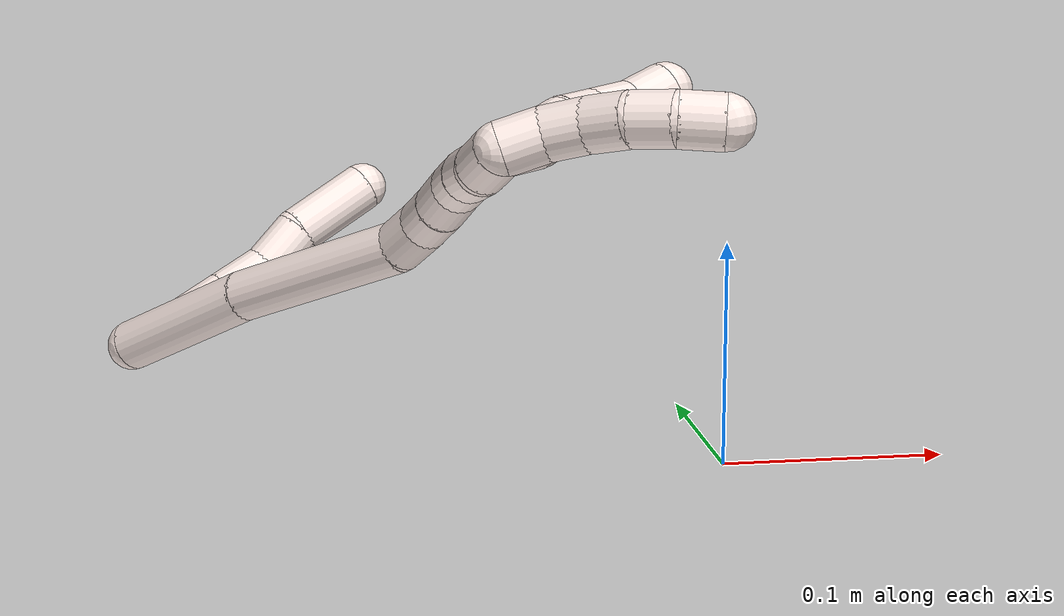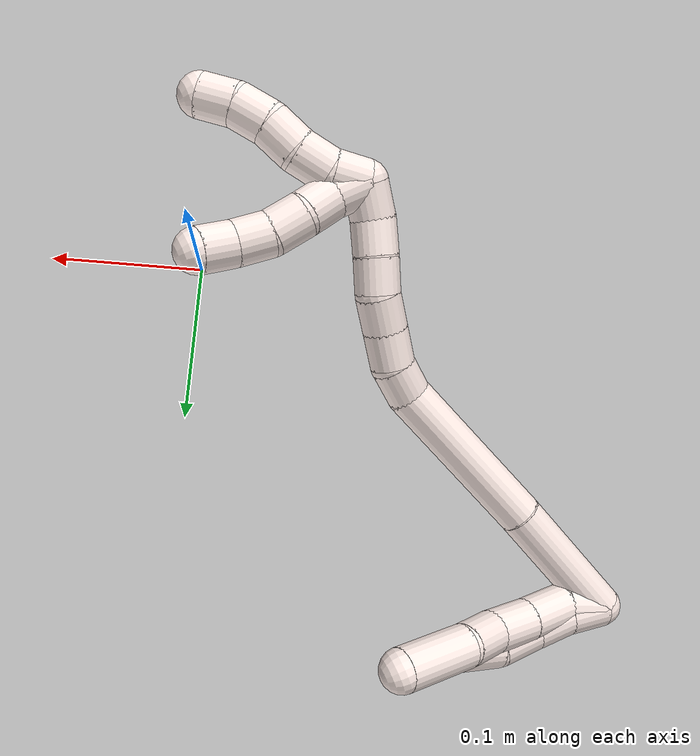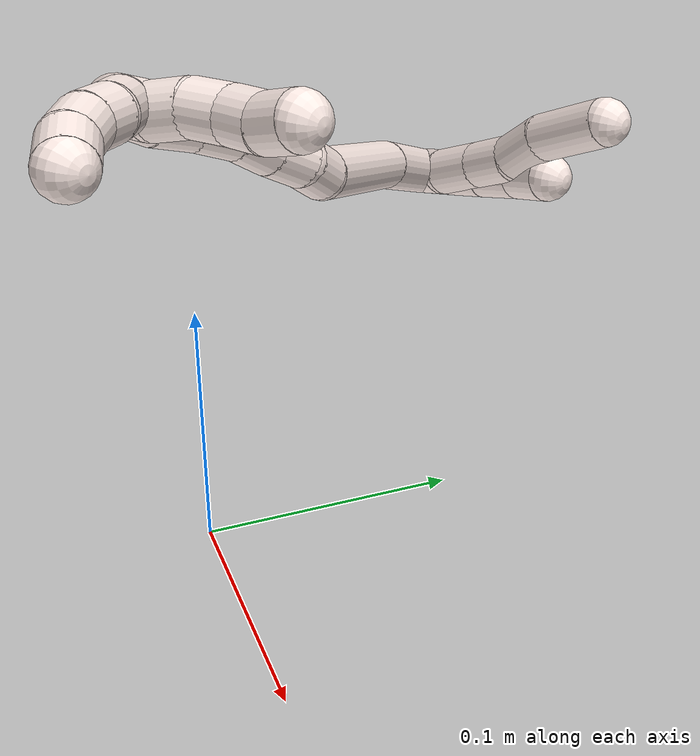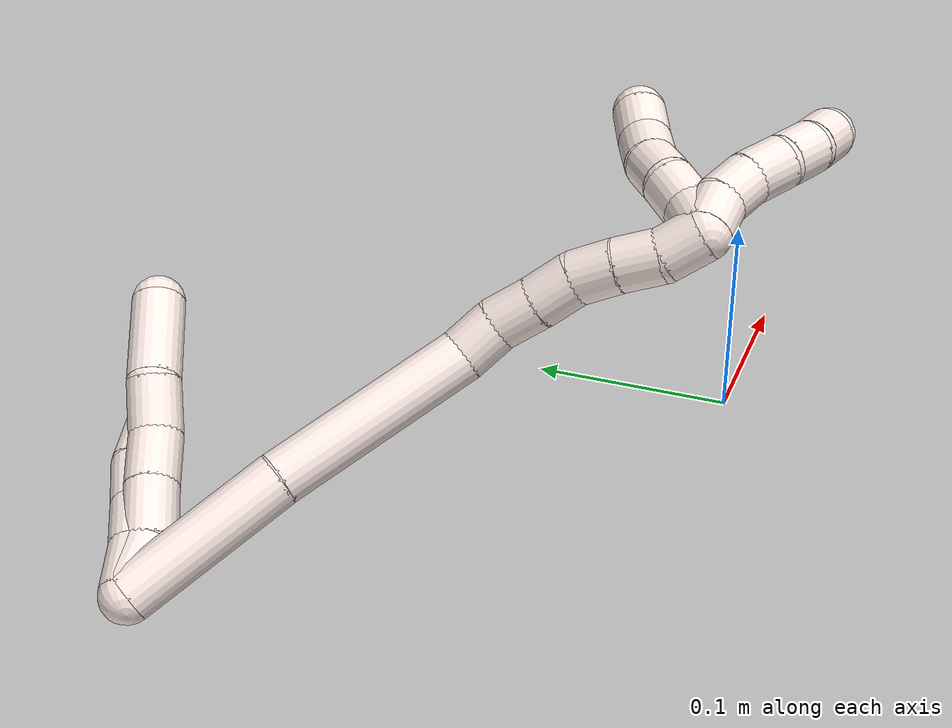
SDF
<sdf version="1.7">
 <world name="default">
  <model name="11">
   <static>0</static>
   <link name="11">
    <collision name="collision-cylinder-e_1_2_8">
     <pose>0.006229 0.000278 -0.011472 -3.11739 0.49733 -3.04636</pose>
     <geometry><cylinder><radius>0.0125</radius><length>0.026114</length></cylinder></geometry>
     <surface>
      <friction><ode><mu>1.16</mu><mu2>1.16</mu2><slip1>0</slip1><slip2>0</slip2></ode></friction>
      <contact><ode><kp>1e+06</kp><kd>1</kd><max_vel>0</max_vel><min_depth>0.001</min_depth></ode></contact>
     </surface>
    </collision>
    <visual name="visual-cylinder-e_1_2_8">
     <pose>0.006229 0.000278 -0.011472 -3.11739 0.49733 -3.04636</pose>
     <geometry><cylinder><radius>0.0125</radius><length>0.026114</length></cylinder></geometry>
     <material><ambient>1 0.933333 0.909804 1</ambient></material>
    </visual>
    <collision name="collision-cylinder-e_2_8_9">
     <pose>0.016064 0.004259 -0.036099 -2.86717 0.25791 -1.50805</pose>
     <geometry><cylinder><radius>0.0125</radius><length>0.028268</length></cylinder></geometry>
     <surface>
      <friction><ode><mu>1.16</mu><mu2>1.16</mu2><slip1>0</slip1><slip2>0</slip2></ode></friction>
      <contact><ode><kp>1e+06</kp><kd>1</kd><max_vel>0</max_vel><min_depth>0.001</min_depth></ode></contact>
     </surface>
    </collision>
    <visual name="visual-cylinder-e_2_8_9">
     <pose>0.016064 0.004259 -0.036099 -2.86717 0.25791 -1.50805</pose>
     <geometry><cylinder><radius>0.0125</radius><length>0.028268</length></cylinder></geometry>
     <material><ambient>1 0.933333 0.909804 1</ambient></material>
    </visual>
    <collision name="collision-cylinder-e_3_9_10">
     <pose>0.023662 0.011218 -0.061299 -2.87758 0.309755 -1.73207</pose>
     <geometry><cylinder><radius>0.0125</radius><length>0.026202</length></cylinder></geometry>
     <surface>
      <friction><ode><mu>1.16</mu><mu2>1.16</mu2><slip1>0</slip1><slip2>0</slip2></ode></friction>
      <contact><ode><kp>1e+06</kp><kd>1</kd><max_vel>0</max_vel><min_depth>0.001</min_depth></ode></contact>
     </surface>
    </collision>
    <visual name="visual-cylinder-e_3_9_10">
     <pose>0.023662 0.011218 -0.061299 -2.87758 0.309755 -1.73207</pose>
     <geometry><cylinder><radius>0.0125</radius><length>0.026202</length></cylinder></geometry>
     <material><ambient>1 0.933333 0.909804 1</ambient></material>
    </visual>
    <collision name="collision-cylinder-e_4_10_11">
     <pose>0.032446 0.020753 -0.083604 -2.59239 0.379031 -1.19556</pose>
     <geometry><cylinder><radius>0.0125</radius><length>0.025895</length></cylinder></geometry>
     <surface>
      <friction><ode><mu>1.16</mu><mu2>1.16</mu2><slip1>0</slip1><slip2>0</slip2></ode></friction>
      <contact><ode><kp>1e+06</kp><kd>1</kd><max_vel>0</max_vel><min_depth>0.001</min_depth></ode></contact>
     </surface>
    </collision>
    <visual name="visual-cylinder-e_4_10_11">
     <pose>0.032446 0.020753 -0.083604 -2.59239 0.379031 -1.19556</pose>
     <geometry><cylinder><radius>0.0125</radius><length>0.025895</length></cylinder></geometry>
     <material><ambient>1 0.933333 0.909804 1</ambient></material>
    </visual>
    <collision name="collision-cylinder-e_5_11_6">
     <pose>0.043694 0.032999 -0.113769 -2.85038 0.301235 -1.60514</pose>
     <geometry><cylinder><radius>0.0125</radius><length>0.043522</length></cylinder></geometry>
     <surface>
      <friction><ode><mu>1.16</mu><mu2>1.16</mu2><slip1>0</slip1><slip2>0</slip2></ode></friction>
      <contact><ode><kp>1e+06</kp><kd>1</kd><max_vel>0</max_vel><min_depth>0.001</min_depth></ode></contact>
     </surface>
    </collision>
    <visual name="visual-cylinder-e_5_11_6">
     <pose>0.043694 0.032999 -0.113769 -2.85038 0.301235 -1.60514</pose>
     <geometry><cylinder><radius>0.0125</radius><length>0.043522</length></cylinder></geometry>
     <material><ambient>1 0.933333 0.909804 1</ambient></material>
    </visual>
    <collision name="collision-cylinder-e_1_2_12">
     <pose>0.003343 0.00105 -0.011852 -3.05327 0.273903 -2.52102</pose>
     <geometry><cylinder><radius>0.0125</radius><length>0.024719</length></cylinder></geometry>
     <surface>
      <friction><ode><mu>1.16</mu><mu2>1.16</mu2><slip1>0</slip1><slip2>0</slip2></ode></friction>
      <contact><ode><kp>1e+06</kp><kd>1</kd><max_vel>0</max_vel><min_depth>0.001</min_depth></ode></contact>
     </surface>
    </collision>
    <visual name="visual-cylinder-e_1_2_12">
     <pose>0.003343 0.00105 -0.011852 -3.05327 0.273903 -2.52102</pose>
     <geometry><cylinder><radius>0.0125</radius><length>0.024719</length></cylinder></geometry>
     <material><ambient>1 0.933333 0.909804 1</ambient></material>
    </visual>
    <collision name="collision-cylinder-e_2_12_13">
     <pose>0.008219 0.003662 -0.035358 -3.0083 0.129663 -1.54309</pose>
     <geometry><cylinder><radius>0.0125</radius><length>0.023714</length></cylinder></geometry>
     <surface>
      <friction><ode><mu>1.16</mu><mu2>1.16</mu2><slip1>0</slip1><slip2>0</slip2></ode></friction>
      <contact><ode><kp>1e+06</kp><kd>1</kd><max_vel>0</max_vel><min_depth>0.001</min_depth></ode></contact>
     </surface>
    </collision>
    <visual name="visual-cylinder-e_2_12_13">
     <pose>0.008219 0.003662 -0.035358 -3.0083 0.129663 -1.54309</pose>
     <geometry><cylinder><radius>0.0125</radius><length>0.023714</length></cylinder></geometry>
     <material><ambient>1 0.933333 0.909804 1</ambient></material>
    </visual>
    <collision name="collision-cylinder-e_3_13_14">
     <pose>0.011149 0.00703 -0.058862 -2.99042 0.115974 -1.30802</pose>
     <geometry><cylinder><radius>0.0125</radius><length>0.024136</length></cylinder></geometry>
     <surface>
      <friction><ode><mu>1.16</mu><mu2>1.16</mu2><slip1>0</slip1><slip2>0</slip2></ode></friction>
      <contact><ode><kp>1e+06</kp><kd>1</kd><max_vel>0</max_vel><min_depth>0.001</min_depth></ode></contact>
     </surface>
    </collision>
    <visual name="visual-cylinder-e_3_13_14">
     <pose>0.011149 0.00703 -0.058862 -2.99042 0.115974 -1.30802</pose>
     <geometry><cylinder><radius>0.0125</radius><length>0.024136</length></cylinder></geometry>
     <material><ambient>1 0.933333 0.909804 1</ambient></material>
    </visual>
    <collision name="collision-cylinder-e_4_14_5">
     <pose>0.017903 0.009392 -0.083326 -3.09745 0.401273 -2.92533</pose>
     <geometry><cylinder><radius>0.0125</radius><length>0.027431</length></cylinder></geometry>
     <surface>
      <friction><ode><mu>1.16</mu><mu2>1.16</mu2><slip1>0</slip1><slip2>0</slip2></ode></friction>
      <contact><ode><kp>1e+06</kp><kd>1</kd><max_vel>0</max_vel><min_depth>0.001</min_depth></ode></contact>
     </surface>
    </collision>
    <visual name="visual-cylinder-e_4_14_5">
     <pose>0.017903 0.009392 -0.083326 -3.09745 0.401273 -2.92533</pose>
     <geometry><cylinder><radius>0.0125</radius><length>0.027431</length></cylinder></geometry>
     <material><ambient>1 0.933333 0.909804 1</ambient></material>
    </visual>
    <collision name="collision-cylinder-e_1_2_15">
     <pose>0.03649 -0.006636 -0.014699 2.71752 1.15464 2.50319</pose>
     <geometry><cylinder><radius>0.0125</radius><length>0.07979</length></cylinder></geometry>
     <surface>
      <friction><ode><mu>1.16</mu><mu2>1.16</mu2><slip1>0</slip1><slip2>0</slip2></ode></friction>
      <contact><ode><kp>1e+06</kp><kd>1</kd><max_vel>0</max_vel><min_depth>0.001</min_depth></ode></contact>
     </surface>
    </collision>
    <visual name="visual-cylinder-e_1_2_15">
     <pose>0.03649 -0.006636 -0.014699 2.71752 1.15464 2.50319</pose>
     <geometry><cylinder><radius>0.0125</radius><length>0.07979</length></cylinder></geometry>
     <material><ambient>1 0.933333 0.909804 1</ambient></material>
    </visual>
    <collision name="collision-cylinder-e_2_15_16">
     <pose>0.116474 -0.025425 -0.048002 2.56294 1.09844 2.2362</pose>
     <geometry><cylinder><radius>0.0125</radius><length>0.097684</length></cylinder></geometry>
     <surface>
      <friction><ode><mu>1.16</mu><mu2>1.16</mu2><slip1>0</slip1><slip2>0</slip2></ode></friction>
      <contact><ode><kp>1e+06</kp><kd>1</kd><max_vel>0</max_vel><min_depth>0.001</min_depth></ode></contact>
     </surface>
    </collision>
    <visual name="visual-cylinder-e_2_15_16">
     <pose>0.116474 -0.025425 -0.048002 2.56294 1.09844 2.2362</pose>
     <geometry><cylinder><radius>0.0125</radius><length>0.097684</length></cylinder></geometry>
     <material><ambient>1 0.933333 0.909804 1</ambient></material>
    </visual>
    <collision name="collision-cylinder-e_3_16_17">
     <pose>0.170264 -0.037359 -0.068696 -3.03683 1.36953 -3.01336</pose>
     <geometry><cylinder><radius>0.0125</radius><length>0.021017</length></cylinder></geometry>
     <surface>
      <friction><ode><mu>1.16</mu><mu2>1.16</mu2><slip1>0</slip1><slip2>0</slip2></ode></friction>
      <contact><ode><kp>1e+06</kp><kd>1</kd><max_vel>0</max_vel><min_depth>0.001</min_depth></ode></contact>
     </surface>
    </collision>
    <visual name="visual-cylinder-e_3_16_17">
     <pose>0.170264 -0.037359 -0.068696 -3.03683 1.36953 -3.01336</pose>
     <geometry><cylinder><radius>0.0125</radius><length>0.021017</length></cylinder></geometry>
     <material><ambient>1 0.933333 0.909804 1</ambient></material>
    </visual>
    <collision name="collision-cylinder-e_4_17_18">
     <pose>0.190904 -0.037742 -0.069844 0.569223 1.4632 0.513708</pose>
     <geometry><cylinder><radius>0.0125</radius><length>0.020809</length></cylinder></geometry>
     <surface>
      <friction><ode><mu>1.16</mu><mu2>1.16</mu2><slip1>0</slip1><slip2>0</slip2></ode></friction>
      <contact><ode><kp>1e+06</kp><kd>1</kd><max_vel>0</max_vel><min_depth>0.001</min_depth></ode></contact>
     </surface>
    </collision>
    <visual name="visual-cylinder-e_4_17_18">
     <pose>0.190904 -0.037742 -0.069844 0.569223 1.4632 0.513708</pose>
     <geometry><cylinder><radius>0.0125</radius><length>0.020809</length></cylinder></geometry>
     <material><ambient>1 0.933333 0.909804 1</ambient></material>
    </visual>
    <collision name="collision-cylinder-e_5_18_19">
     <pose>0.211458 -0.038306 -0.068174 -0.05258 1.49936 -0.048953</pose>
     <geometry><cylinder><radius>0.0125</radius><length>0.02047</length></cylinder></geometry>
     <surface>
      <friction><ode><mu>1.16</mu><mu2>1.16</mu2><slip1>0</slip1><slip2>0</slip2></ode></friction>
      <contact><ode><kp>1e+06</kp><kd>1</kd><max_vel>0</max_vel><min_depth>0.001</min_depth></ode></contact>
     </surface>
    </collision>
    <visual name="visual-cylinder-e_5_18_19">
     <pose>0.211458 -0.038306 -0.068174 -0.05258 1.49936 -0.048953</pose>
     <geometry><cylinder><radius>0.0125</radius><length>0.02047</length></cylinder></geometry>
     <material><ambient>1 0.933333 0.909804 1</ambient></material>
    </visual>
    <collision name="collision-cylinder-e_6_19_20">
     <pose>0.231189 -0.039928 -0.064563 0.522878 1.23484 0.375476</pose>
     <geometry><cylinder><radius>0.0125</radius><length>0.020174</length></cylinder></geometry>
     <surface>
      <friction><ode><mu>1.16</mu><mu2>1.16</mu2><slip1>0</slip1><slip2>0</slip2></ode></friction>
      <contact><ode><kp>1e+06</kp><kd>1</kd><max_vel>0</max_vel><min_depth>0.001</min_depth></ode></contact>
     </surface>
    </collision>
    <visual name="visual-cylinder-e_6_19_20">
     <pose>0.231189 -0.039928 -0.064563 0.522878 1.23484 0.375476</pose>
     <geometry><cylinder><radius>0.0125</radius><length>0.020174</length></cylinder></geometry>
     <material><ambient>1 0.933333 0.909804 1</ambient></material>
    </visual>
    <collision name="collision-cylinder-e_7_20_21">
     <pose>0.249983 -0.044132 -0.058891 0.739122 1.18399 0.50963</pose>
     <geometry><cylinder><radius>0.0125</radius><length>0.020021</length></cylinder></geometry>
     <surface>
      <friction><ode><mu>1.16</mu><mu2>1.16</mu2><slip1>0</slip1><slip2>0</slip2></ode></friction>
      <contact><ode><kp>1e+06</kp><kd>1</kd><max_vel>0</max_vel><min_depth>0.001</min_depth></ode></contact>
     </surface>
    </collision>
    <visual name="visual-cylinder-e_7_20_21">
     <pose>0.249983 -0.044132 -0.058891 0.739122 1.18399 0.50963</pose>
     <geometry><cylinder><radius>0.0125</radius><length>0.020021</length></cylinder></geometry>
     <material><ambient>1 0.933333 0.909804 1</ambient></material>
    </visual>
    <collision name="collision-cylinder-e_8_21_1">
     <pose>0.269216 -0.047268 -0.055229 0.597096 1.46544 0.540295</pose>
     <geometry><cylinder><radius>0.0125</radius><length>0.020036</length></cylinder></geometry>
     <surface>
      <friction><ode><mu>1.16</mu><mu2>1.16</mu2><slip1>0</slip1><slip2>0</slip2></ode></friction>
      <contact><ode><kp>1e+06</kp><kd>1</kd><max_vel>0</max_vel><min_depth>0.001</min_depth></ode></contact>
     </surface>
    </collision>
    <visual name="visual-cylinder-e_8_21_1">
     <pose>0.269216 -0.047268 -0.055229 0.597096 1.46544 0.540295</pose>
     <geometry><cylinder><radius>0.0125</radius><length>0.020036</length></cylinder></geometry>
     <material><ambient>1 0.933333 0.909804 1</ambient></material>
    </visual>
    <collision name="collision-cylinder-e_1_1_22">
     <pose>0.284904 -0.048831 -0.062499 3.02304 0.609609 2.76871</pose>
     <geometry><cylinder><radius>0.0125</radius><length>0.02</length></cylinder></geometry>
     <surface>
      <friction><ode><mu>1.16</mu><mu2>1.16</mu2><slip1>0</slip1><slip2>0</slip2></ode></friction>
      <contact><ode><kp>1e+06</kp><kd>1</kd><max_vel>0</max_vel><min_depth>0.001</min_depth></ode></contact>
     </surface>
    </collision>
    <visual name="visual-cylinder-e_1_1_22">
     <pose>0.284904 -0.048831 -0.062499 3.02304 0.609609 2.76871</pose>
     <geometry><cylinder><radius>0.0125</radius><length>0.02</length></cylinder></geometry>
     <material><ambient>1 0.933333 0.909804 1</ambient></material>
    </visual>
    <collision name="collision-cylinder-e_2_22_23">
     <pose>0.298071 -0.052779 -0.076619 2.67943 0.839313 2.17101</pose>
     <geometry><cylinder><radius>0.0125</radius><length>0.02</length></cylinder></geometry>
     <surface>
      <friction><ode><mu>1.16</mu><mu2>1.16</mu2><slip1>0</slip1><slip2>0</slip2></ode></friction>
      <contact><ode><kp>1e+06</kp><kd>1</kd><max_vel>0</max_vel><min_depth>0.001</min_depth></ode></contact>
     </surface>
    </collision>
    <visual name="visual-cylinder-e_2_22_23">
     <pose>0.298071 -0.052779 -0.076619 2.67943 0.839313 2.17101</pose>
     <geometry><cylinder><radius>0.0125</radius><length>0.02</length></cylinder></geometry>
     <material><ambient>1 0.933333 0.909804 1</ambient></material>
    </visual>
    <collision name="collision-cylinder-e_3_23_24">
     <pose>0.313705 -0.059752 -0.086714 2.37115 0.959936 1.81809</pose>
     <geometry><cylinder><radius>0.0125</radius><length>0.02</length></cylinder></geometry>
     <surface>
      <friction><ode><mu>1.16</mu><mu2>1.16</mu2><slip1>0</slip1><slip2>0</slip2></ode></friction>
      <contact><ode><kp>1e+06</kp><kd>1</kd><max_vel>0</max_vel><min_depth>0.001</min_depth></ode></contact>
     </surface>
    </collision>
    <visual name="visual-cylinder-e_3_23_24">
     <pose>0.313705 -0.059752 -0.086714 2.37115 0.959936 1.81809</pose>
     <geometry><cylinder><radius>0.0125</radius><length>0.02</length></cylinder></geometry>
     <material><ambient>1 0.933333 0.909804 1</ambient></material>
    </visual>
    <collision name="collision-cylinder-e_4_24_25">
     <pose>0.328565 -0.068503 -0.096566 2.44934 0.729986 1.62858</pose>
     <geometry><cylinder><radius>0.0125</radius><length>0.02</length></cylinder></geometry>
     <surface>
      <friction><ode><mu>1.16</mu><mu2>1.16</mu2><slip1>0</slip1><slip2>0</slip2></ode></friction>
      <contact><ode><kp>1e+06</kp><kd>1</kd><max_vel>0</max_vel><min_depth>0.001</min_depth></ode></contact>
     </surface>
    </collision>
    <visual name="visual-cylinder-e_4_24_25">
     <pose>0.328565 -0.068503 -0.096566 2.44934 0.729986 1.62858</pose>
     <geometry><cylinder><radius>0.0125</radius><length>0.02</length></cylinder></geometry>
     <material><ambient>1 0.933333 0.909804 1</ambient></material>
    </visual>
    <collision name="collision-cylinder-e_5_25_4">
     <pose>0.340024 -0.078 -0.10969 2.571 0.499537 1.4317</pose>
     <geometry><cylinder><radius>0.0125</radius><length>0.02</length></cylinder></geometry>
     <surface>
      <friction><ode><mu>1.16</mu><mu2>1.16</mu2><slip1>0</slip1><slip2>0</slip2></ode></friction>
      <contact><ode><kp>1e+06</kp><kd>1</kd><max_vel>0</max_vel><min_depth>0.001</min_depth></ode></contact>
     </surface>
    </collision>
    <visual name="visual-cylinder-e_5_25_4">
     <pose>0.340024 -0.078 -0.10969 2.571 0.499537 1.4317</pose>
     <geometry><cylinder><radius>0.0125</radius><length>0.02</length></cylinder></geometry>
     <material><ambient>1 0.933333 0.909804 1</ambient></material>
    </visual>
    <collision name="collision-cylinder-e_1_1_26">
     <pose>0.278867 -0.047481 -0.064346 -3.10355 -0.031159 1.37255</pose>
     <geometry><cylinder><radius>0.0125</radius><length>0.02</length></cylinder></geometry>
     <surface>
      <friction><ode><mu>1.16</mu><mu2>1.16</mu2><slip1>0</slip1><slip2>0</slip2></ode></friction>
      <contact><ode><kp>1e+06</kp><kd>1</kd><max_vel>0</max_vel><min_depth>0.001</min_depth></ode></contact>
     </surface>
    </collision>
    <visual name="visual-cylinder-e_1_1_26">
     <pose>0.278867 -0.047481 -0.064346 -3.10355 -0.031159 1.37255</pose>
     <geometry><cylinder><radius>0.0125</radius><length>0.02</length></cylinder></geometry>
     <material><ambient>1 0.933333 0.909804 1</ambient></material>
    </visual>
    <collision name="collision-cylinder-e_2_26_27">
     <pose>0.277474 -0.043999 -0.083779 -2.82431 -0.10834 0.653541</pose>
     <geometry><cylinder><radius>0.0125</radius><length>0.02</length></cylinder></geometry>
     <surface>
      <friction><ode><mu>1.16</mu><mu2>1.16</mu2><slip1>0</slip1><slip2>0</slip2></ode></friction>
      <contact><ode><kp>1e+06</kp><kd>1</kd><max_vel>0</max_vel><min_depth>0.001</min_depth></ode></contact>
     </surface>
    </collision>
    <visual name="visual-cylinder-e_2_26_27">
     <pose>0.277474 -0.043999 -0.083779 -2.82431 -0.10834 0.653541</pose>
     <geometry><cylinder><radius>0.0125</radius><length>0.02</length></cylinder></geometry>
     <material><ambient>1 0.933333 0.909804 1</ambient></material>
    </visual>
    <collision name="collision-cylinder-e_3_27_28">
     <pose>0.274978 -0.040091 -0.10309 -3.06009 -0.141978 2.10037</pose>
     <geometry><cylinder><radius>0.0125</radius><length>0.02</length></cylinder></geometry>
     <surface>
      <friction><ode><mu>1.16</mu><mu2>1.16</mu2><slip1>0</slip1><slip2>0</slip2></ode></friction>
      <contact><ode><kp>1e+06</kp><kd>1</kd><max_vel>0</max_vel><min_depth>0.001</min_depth></ode></contact>
     </surface>
    </collision>
    <visual name="visual-cylinder-e_3_27_28">
     <pose>0.274978 -0.040091 -0.10309 -3.06009 -0.141978 2.10037</pose>
     <geometry><cylinder><radius>0.0125</radius><length>0.02</length></cylinder></geometry>
     <material><ambient>1 0.933333 0.909804 1</ambient></material>
    </visual>
    <collision name="collision-cylinder-e_4_28_29">
     <pose>0.274519 -0.03938 -0.122911 3.13206 0.095809 2.94345</pose>
     <geometry><cylinder><radius>0.0125</radius><length>0.02</length></cylinder></geometry>
     <surface>
      <friction><ode><mu>1.16</mu><mu2>1.16</mu2><slip1>0</slip1><slip2>0</slip2></ode></friction>
      <contact><ode><kp>1e+06</kp><kd>1</kd><max_vel>0</max_vel><min_depth>0.001</min_depth></ode></contact>
     </surface>
    </collision>
    <visual name="visual-cylinder-e_4_28_29">
     <pose>0.274519 -0.03938 -0.122911 3.13206 0.095809 2.94345</pose>
     <geometry><cylinder><radius>0.0125</radius><length>0.02</length></cylinder></geometry>
     <material><ambient>1 0.933333 0.909804 1</ambient></material>
    </visual>
    <collision name="collision-cylinder-e_5_29_3">
     <pose>0.277634 -0.03771 -0.142468 -2.95982 0.217561 -1.75075</pose>
     <geometry><cylinder><radius>0.0125</radius><length>0.02</length></cylinder></geometry>
     <surface>
      <friction><ode><mu>1.16</mu><mu2>1.16</mu2><slip1>0</slip1><slip2>0</slip2></ode></friction>
      <contact><ode><kp>1e+06</kp><kd>1</kd><max_vel>0</max_vel><min_depth>0.001</min_depth></ode></contact>
     </surface>
    </collision>
    <visual name="visual-cylinder-e_5_29_3">
     <pose>0.277634 -0.03771 -0.142468 -2.95982 0.217561 -1.75075</pose>
     <geometry><cylinder><radius>0.0125</radius><length>0.02</length></cylinder></geometry>
     <material><ambient>1 0.933333 0.909804 1</ambient></material>
    </visual>
    <collision name="collision-sphere-3">
     <pose>0.279793 -0.035945 -0.152071 0 -0 0</pose>
     <geometry><sphere><radius>0.0125</radius></sphere></geometry>
     <surface>
      <friction><ode><mu>1.16</mu><mu2>1.16</mu2><slip1>0</slip1><slip2>0</slip2></ode></friction>
      <contact><ode><kp>1e+06</kp><kd>1</kd><max_vel>0</max_vel><min_depth>0.001</min_depth></ode></contact>
     </surface>
    </collision>
    <visual name="visual-sphere-3">
     <pose>0.279793 -0.035945 -0.152071 0 -0 0</pose>
     <geometry><sphere><radius>0.0125</radius></sphere></geometry>
     <material><ambient>1 0.933333 0.909804 1</ambient></material>
    </visual>
    <collision name="collision-sphere-29">
     <pose>0.275476 -0.039475 -0.132864 0 -0 0</pose>
     <geometry><sphere><radius>0.0125</radius></sphere></geometry>
     <surface>
      <friction><ode><mu>1.16</mu><mu2>1.16</mu2><slip1>0</slip1><slip2>0</slip2></ode></friction>
      <contact><ode><kp>1e+06</kp><kd>1</kd><max_vel>0</max_vel><min_depth>0.001</min_depth></ode></contact>
     </surface>
    </collision>
    <visual name="visual-sphere-29">
     <pose>0.275476 -0.039475 -0.132864 0 -0 0</pose>
     <geometry><sphere><radius>0.0125</radius></sphere></geometry>
     <material><ambient>1 0.933333 0.909804 1</ambient></material>
    </visual>
    <collision name="collision-sphere-28">
     <pose>0.273563 -0.039286 -0.112957 0 -0 0</pose>
     <geometry><sphere><radius>0.0125</radius></sphere></geometry>
     <surface>
      <friction><ode><mu>1.16</mu><mu2>1.16</mu2><slip1>0</slip1><slip2>0</slip2></ode></friction>
      <contact><ode><kp>1e+06</kp><kd>1</kd><max_vel>0</max_vel><min_depth>0.001</min_depth></ode></contact>
     </surface>
    </collision>
    <visual name="visual-sphere-28">
     <pose>0.273563 -0.039286 -0.112957 0 -0 0</pose>
     <geometry><sphere><radius>0.0125</radius></sphere></geometry>
     <material><ambient>1 0.933333 0.909804 1</ambient></material>
    </visual>
    <collision name="collision-sphere-27">
     <pose>0.276393 -0.040897 -0.093224 0 -0 0</pose>
     <geometry><sphere><radius>0.0125</radius></sphere></geometry>
     <surface>
      <friction><ode><mu>1.16</mu><mu2>1.16</mu2><slip1>0</slip1><slip2>0</slip2></ode></friction>
      <contact><ode><kp>1e+06</kp><kd>1</kd><max_vel>0</max_vel><min_depth>0.001</min_depth></ode></contact>
     </surface>
    </collision>
    <visual name="visual-sphere-27">
     <pose>0.276393 -0.040897 -0.093224 0 -0 0</pose>
     <geometry><sphere><radius>0.0125</radius></sphere></geometry>
     <material><ambient>1 0.933333 0.909804 1</ambient></material>
    </visual>
    <collision name="collision-sphere-26">
     <pose>0.278555 -0.047101 -0.074334 0 -0 0</pose>
     <geometry><sphere><radius>0.0125</radius></sphere></geometry>
     <surface>
      <friction><ode><mu>1.16</mu><mu2>1.16</mu2><slip1>0</slip1><slip2>0</slip2></ode></friction>
      <contact><ode><kp>1e+06</kp><kd>1</kd><max_vel>0</max_vel><min_depth>0.001</min_depth></ode></contact>
     </surface>
    </collision>
    <visual name="visual-sphere-26">
     <pose>0.278555 -0.047101 -0.074334 0 -0 0</pose>
     <geometry><sphere><radius>0.0125</radius></sphere></geometry>
     <material><ambient>1 0.933333 0.909804 1</ambient></material>
    </visual>
    <collision name="collision-sphere-4">
     <pose>0.344814 -0.082742 -0.117078 0 -0 0</pose>
     <geometry><sphere><radius>0.0125</radius></sphere></geometry>
     <surface>
      <friction><ode><mu>1.16</mu><mu2>1.16</mu2><slip1>0</slip1><slip2>0</slip2></ode></friction>
      <contact><ode><kp>1e+06</kp><kd>1</kd><max_vel>0</max_vel><min_depth>0.001</min_depth></ode></contact>
     </surface>
    </collision>
    <visual name="visual-sphere-4">
     <pose>0.344814 -0.082742 -0.117078 0 -0 0</pose>
     <geometry><sphere><radius>0.0125</radius></sphere></geometry>
     <material><ambient>1 0.933333 0.909804 1</ambient></material>
    </visual>
    <collision name="collision-sphere-25">
     <pose>0.335233 -0.073259 -0.102303 0 -0 0</pose>
     <geometry><sphere><radius>0.0125</radius></sphere></geometry>
     <surface>
      <friction><ode><mu>1.16</mu><mu2>1.16</mu2><slip1>0</slip1><slip2>0</slip2></ode></friction>
      <contact><ode><kp>1e+06</kp><kd>1</kd><max_vel>0</max_vel><min_depth>0.001</min_depth></ode></contact>
     </surface>
    </collision>
    <visual name="visual-sphere-25">
     <pose>0.335233 -0.073259 -0.102303 0 -0 0</pose>
     <geometry><sphere><radius>0.0125</radius></sphere></geometry>
     <material><ambient>1 0.933333 0.909804 1</ambient></material>
    </visual>
    <collision name="collision-sphere-24">
     <pose>0.321896 -0.063746 -0.09083 0 -0 0</pose>
     <geometry><sphere><radius>0.0125</radius></sphere></geometry>
     <surface>
      <friction><ode><mu>1.16</mu><mu2>1.16</mu2><slip1>0</slip1><slip2>0</slip2></ode></friction>
      <contact><ode><kp>1e+06</kp><kd>1</kd><max_vel>0</max_vel><min_depth>0.001</min_depth></ode></contact>
     </surface>
    </collision>
    <visual name="visual-sphere-24">
     <pose>0.321896 -0.063746 -0.09083 0 -0 0</pose>
     <geometry><sphere><radius>0.0125</radius></sphere></geometry>
     <material><ambient>1 0.933333 0.909804 1</ambient></material>
    </visual>
    <collision name="collision-sphere-23">
     <pose>0.305513 -0.055757 -0.082598 0 -0 0</pose>
     <geometry><sphere><radius>0.0125</radius></sphere></geometry>
     <surface>
      <friction><ode><mu>1.16</mu><mu2>1.16</mu2><slip1>0</slip1><slip2>0</slip2></ode></friction>
      <contact><ode><kp>1e+06</kp><kd>1</kd><max_vel>0</max_vel><min_depth>0.001</min_depth></ode></contact>
     </surface>
    </collision>
    <visual name="visual-sphere-23">
     <pose>0.305513 -0.055757 -0.082598 0 -0 0</pose>
     <geometry><sphere><radius>0.0125</radius></sphere></geometry>
     <material><ambient>1 0.933333 0.909804 1</ambient></material>
    </visual>
    <collision name="collision-sphere-22">
     <pose>0.290629 -0.0498 -0.07064 0 -0 0</pose>
     <geometry><sphere><radius>0.0125</radius></sphere></geometry>
     <surface>
      <friction><ode><mu>1.16</mu><mu2>1.16</mu2><slip1>0</slip1><slip2>0</slip2></ode></friction>
      <contact><ode><kp>1e+06</kp><kd>1</kd><max_vel>0</max_vel><min_depth>0.001</min_depth></ode></contact>
     </surface>
    </collision>
    <visual name="visual-sphere-22">
     <pose>0.290629 -0.0498 -0.07064 0 -0 0</pose>
     <geometry><sphere><radius>0.0125</radius></sphere></geometry>
     <material><ambient>1 0.933333 0.909804 1</ambient></material>
    </visual>
    <collision name="collision-sphere-1">
     <pose>0.279178 -0.047861 -0.054358 0 -0 0</pose>
     <geometry><sphere><radius>0.0125</radius></sphere></geometry>
     <surface>
      <friction><ode><mu>1.16</mu><mu2>1.16</mu2><slip1>0</slip1><slip2>0</slip2></ode></friction>
      <contact><ode><kp>1e+06</kp><kd>1</kd><max_vel>0</max_vel><min_depth>0.001</min_depth></ode></contact>
     </surface>
    </collision>
    <visual name="visual-sphere-1">
     <pose>0.279178 -0.047861 -0.054358 0 -0 0</pose>
     <geometry><sphere><radius>0.0125</radius></sphere></geometry>
     <material><ambient>1 0.933333 0.909804 1</ambient></material>
    </visual>
    <collision name="collision-sphere-21">
     <pose>0.259254 -0.046676 -0.0561 0 -0 0</pose>
     <geometry><sphere><radius>0.0125</radius></sphere></geometry>
     <surface>
      <friction><ode><mu>1.16</mu><mu2>1.16</mu2><slip1>0</slip1><slip2>0</slip2></ode></friction>
      <contact><ode><kp>1e+06</kp><kd>1</kd><max_vel>0</max_vel><min_depth>0.001</min_depth></ode></contact>
     </surface>
    </collision>
    <visual name="visual-sphere-21">
     <pose>0.259254 -0.046676 -0.0561 0 -0 0</pose>
     <geometry><sphere><radius>0.0125</radius></sphere></geometry>
     <material><ambient>1 0.933333 0.909804 1</ambient></material>
    </visual>
    <collision name="collision-sphere-6">
     <pose>0.05015 0.038965 -0.133675 0 -0 0</pose>
     <geometry><sphere><radius>0.0125</radius></sphere></geometry>
     <surface>
      <friction><ode><mu>1.16</mu><mu2>1.16</mu2><slip1>0</slip1><slip2>0</slip2></ode></friction>
      <contact><ode><kp>1e+06</kp><kd>1</kd><max_vel>0</max_vel><min_depth>0.001</min_depth></ode></contact>
     </surface>
    </collision>
    <visual name="visual-sphere-6">
     <pose>0.05015 0.038965 -0.133675 0 -0 0</pose>
     <geometry><sphere><radius>0.0125</radius></sphere></geometry>
     <material><ambient>1 0.933333 0.909804 1</ambient></material>
    </visual>
    <collision name="collision-sphere-11">
     <pose>0.037237 0.027032 -0.093863 0 -0 0</pose>
     <geometry><sphere><radius>0.0125</radius></sphere></geometry>
     <surface>
      <friction><ode><mu>1.16</mu><mu2>1.16</mu2><slip1>0</slip1><slip2>0</slip2></ode></friction>
      <contact><ode><kp>1e+06</kp><kd>1</kd><max_vel>0</max_vel><min_depth>0.001</min_depth></ode></contact>
     </surface>
    </collision>
    <visual name="visual-sphere-11">
     <pose>0.037237 0.027032 -0.093863 0 -0 0</pose>
     <geometry><sphere><radius>0.0125</radius></sphere></geometry>
     <material><ambient>1 0.933333 0.909804 1</ambient></material>
    </visual>
    <collision name="collision-sphere-10">
     <pose>0.027656 0.014474 -0.073344 0 -0 0</pose>
     <geometry><sphere><radius>0.0125</radius></sphere></geometry>
     <surface>
      <friction><ode><mu>1.16</mu><mu2>1.16</mu2><slip1>0</slip1><slip2>0</slip2></ode></friction>
      <contact><ode><kp>1e+06</kp><kd>1</kd><max_vel>0</max_vel><min_depth>0.001</min_depth></ode></contact>
     </surface>
    </collision>
    <visual name="visual-sphere-10">
     <pose>0.027656 0.014474 -0.073344 0 -0 0</pose>
     <geometry><sphere><radius>0.0125</radius></sphere></geometry>
     <material><ambient>1 0.933333 0.909804 1</ambient></material>
    </visual>
    <collision name="collision-sphere-9">
     <pose>0.019669 0.007962 -0.049254 0 -0 0</pose>
     <geometry><sphere><radius>0.0125</radius></sphere></geometry>
     <surface>
      <friction><ode><mu>1.16</mu><mu2>1.16</mu2><slip1>0</slip1><slip2>0</slip2></ode></friction>
      <contact><ode><kp>1e+06</kp><kd>1</kd><max_vel>0</max_vel><min_depth>0.001</min_depth></ode></contact>
     </surface>
    </collision>
    <visual name="visual-sphere-9">
     <pose>0.019669 0.007962 -0.049254 0 -0 0</pose>
     <geometry><sphere><radius>0.0125</radius></sphere></geometry>
     <material><ambient>1 0.933333 0.909804 1</ambient></material>
    </visual>
    <collision name="collision-sphere-2">
     <geometry><sphere><radius>0.0125</radius></sphere></geometry>
     <surface>
      <friction><ode><mu>1.16</mu><mu2>1.16</mu2><slip1>0</slip1><slip2>0</slip2></ode></friction>
      <contact><ode><kp>1e+06</kp><kd>1</kd><max_vel>0</max_vel><min_depth>0.001</min_depth></ode></contact>
     </surface>
    </collision>
    <visual name="visual-sphere-2">
     <geometry><sphere><radius>0.0125</radius></sphere></geometry>
     <material><ambient>1 0.933333 0.909804 1</ambient></material>
    </visual>
    <collision name="collision-sphere-19">
     <pose>0.221666 -0.038267 -0.067444 0 -0 0</pose>
     <geometry><sphere><radius>0.0125</radius></sphere></geometry>
     <surface>
      <friction><ode><mu>1.16</mu><mu2>1.16</mu2><slip1>0</slip1><slip2>0</slip2></ode></friction>
      <contact><ode><kp>1e+06</kp><kd>1</kd><max_vel>0</max_vel><min_depth>0.001</min_depth></ode></contact>
     </surface>
    </collision>
    <visual name="visual-sphere-19">
     <pose>0.221666 -0.038267 -0.067444 0 -0 0</pose>
     <geometry><sphere><radius>0.0125</radius></sphere></geometry>
     <material><ambient>1 0.933333 0.909804 1</ambient></material>
    </visual>
    <collision name="collision-sphere-8">
     <pose>0.012459 0.000555 -0.022944 0 -0 0</pose>
     <geometry><sphere><radius>0.0125</radius></sphere></geometry>
     <surface>
      <friction><ode><mu>1.16</mu><mu2>1.16</mu2><slip1>0</slip1><slip2>0</slip2></ode></friction>
      <contact><ode><kp>1e+06</kp><kd>1</kd><max_vel>0</max_vel><min_depth>0.001</min_depth></ode></contact>
     </surface>
    </collision>
    <visual name="visual-sphere-8">
     <pose>0.012459 0.000555 -0.022944 0 -0 0</pose>
     <geometry><sphere><radius>0.0125</radius></sphere></geometry>
     <material><ambient>1 0.933333 0.909804 1</ambient></material>
    </visual>
    <collision name="collision-sphere-12">
     <pose>0.006686 0.002099 -0.023705 0 -0 0</pose>
     <geometry><sphere><radius>0.0125</radius></sphere></geometry>
     <surface>
      <friction><ode><mu>1.16</mu><mu2>1.16</mu2><slip1>0</slip1><slip2>0</slip2></ode></friction>
      <contact><ode><kp>1e+06</kp><kd>1</kd><max_vel>0</max_vel><min_depth>0.001</min_depth></ode></contact>
     </surface>
    </collision>
    <visual name="visual-sphere-12">
     <pose>0.006686 0.002099 -0.023705 0 -0 0</pose>
     <geometry><sphere><radius>0.0125</radius></sphere></geometry>
     <material><ambient>1 0.933333 0.909804 1</ambient></material>
    </visual>
    <collision name="collision-sphere-13">
     <pose>0.009753 0.005224 -0.047012 0 -0 0</pose>
     <geometry><sphere><radius>0.0125</radius></sphere></geometry>
     <surface>
      <friction><ode><mu>1.16</mu><mu2>1.16</mu2><slip1>0</slip1><slip2>0</slip2></ode></friction>
      <contact><ode><kp>1e+06</kp><kd>1</kd><max_vel>0</max_vel><min_depth>0.001</min_depth></ode></contact>
     </surface>
    </collision>
    <visual name="visual-sphere-13">
     <pose>0.009753 0.005224 -0.047012 0 -0 0</pose>
     <geometry><sphere><radius>0.0125</radius></sphere></geometry>
     <material><ambient>1 0.933333 0.909804 1</ambient></material>
    </visual>
    <collision name="collision-sphere-14">
     <pose>0.012545 0.008835 -0.070712 0 -0 0</pose>
     <geometry><sphere><radius>0.0125</radius></sphere></geometry>
     <surface>
      <friction><ode><mu>1.16</mu><mu2>1.16</mu2><slip1>0</slip1><slip2>0</slip2></ode></friction>
      <contact><ode><kp>1e+06</kp><kd>1</kd><max_vel>0</max_vel><min_depth>0.001</min_depth></ode></contact>
     </surface>
    </collision>
    <visual name="visual-sphere-14">
     <pose>0.012545 0.008835 -0.070712 0 -0 0</pose>
     <geometry><sphere><radius>0.0125</radius></sphere></geometry>
     <material><ambient>1 0.933333 0.909804 1</ambient></material>
    </visual>
    <collision name="collision-sphere-5">
     <pose>0.02326 0.009949 -0.095939 0 -0 0</pose>
     <geometry><sphere><radius>0.0125</radius></sphere></geometry>
     <surface>
      <friction><ode><mu>1.16</mu><mu2>1.16</mu2><slip1>0</slip1><slip2>0</slip2></ode></friction>
      <contact><ode><kp>1e+06</kp><kd>1</kd><max_vel>0</max_vel><min_depth>0.001</min_depth></ode></contact>
     </surface>
    </collision>
    <visual name="visual-sphere-5">
     <pose>0.02326 0.009949 -0.095939 0 -0 0</pose>
     <geometry><sphere><radius>0.0125</radius></sphere></geometry>
     <material><ambient>1 0.933333 0.909804 1</ambient></material>
    </visual>
    <collision name="collision-sphere-15">
     <pose>0.07298 -0.013272 -0.029397 0 -0 0</pose>
     <geometry><sphere><radius>0.0125</radius></sphere></geometry>
     <surface>
      <friction><ode><mu>1.16</mu><mu2>1.16</mu2><slip1>0</slip1><slip2>0</slip2></ode></friction>
      <contact><ode><kp>1e+06</kp><kd>1</kd><max_vel>0</max_vel><min_depth>0.001</min_depth></ode></contact>
     </surface>
    </collision>
    <visual name="visual-sphere-15">
     <pose>0.07298 -0.013272 -0.029397 0 -0 0</pose>
     <geometry><sphere><radius>0.0125</radius></sphere></geometry>
     <material><ambient>1 0.933333 0.909804 1</ambient></material>
    </visual>
    <collision name="collision-sphere-16">
     <pose>0.159967 -0.037579 -0.066607 0 -0 0</pose>
     <geometry><sphere><radius>0.0125</radius></sphere></geometry>
     <surface>
      <friction><ode><mu>1.16</mu><mu2>1.16</mu2><slip1>0</slip1><slip2>0</slip2></ode></friction>
      <contact><ode><kp>1e+06</kp><kd>1</kd><max_vel>0</max_vel><min_depth>0.001</min_depth></ode></contact>
     </surface>
    </collision>
    <visual name="visual-sphere-16">
     <pose>0.159967 -0.037579 -0.066607 0 -0 0</pose>
     <geometry><sphere><radius>0.0125</radius></sphere></geometry>
     <material><ambient>1 0.933333 0.909804 1</ambient></material>
    </visual>
    <collision name="collision-sphere-17">
     <pose>0.18056 -0.03714 -0.070785 0 -0 0</pose>
     <geometry><sphere><radius>0.0125</radius></sphere></geometry>
     <surface>
      <friction><ode><mu>1.16</mu><mu2>1.16</mu2><slip1>0</slip1><slip2>0</slip2></ode></friction>
      <contact><ode><kp>1e+06</kp><kd>1</kd><max_vel>0</max_vel><min_depth>0.001</min_depth></ode></contact>
     </surface>
    </collision>
    <visual name="visual-sphere-17">
     <pose>0.18056 -0.03714 -0.070785 0 -0 0</pose>
     <geometry><sphere><radius>0.0125</radius></sphere></geometry>
     <material><ambient>1 0.933333 0.909804 1</ambient></material>
    </visual>
    <collision name="collision-sphere-18">
     <pose>0.201249 -0.038344 -0.068903 0 -0 0</pose>
     <geometry><sphere><radius>0.0125</radius></sphere></geometry>
     <surface>
      <friction><ode><mu>1.16</mu><mu2>1.16</mu2><slip1>0</slip1><slip2>0</slip2></ode></friction>
      <contact><ode><kp>1e+06</kp><kd>1</kd><max_vel>0</max_vel><min_depth>0.001</min_depth></ode></contact>
     </surface>
    </collision>
    <visual name="visual-sphere-18">
     <pose>0.201249 -0.038344 -0.068903 0 -0 0</pose>
     <geometry><sphere><radius>0.0125</radius></sphere></geometry>
     <material><ambient>1 0.933333 0.909804 1</ambient></material>
    </visual>
    <collision name="collision-sphere-20">
     <pose>0.240712 -0.041588 -0.061682 0 -0 0</pose>
     <geometry><sphere><radius>0.0125</radius></sphere></geometry>
     <surface>
      <friction><ode><mu>1.16</mu><mu2>1.16</mu2><slip1>0</slip1><slip2>0</slip2></ode></friction>
      <contact><ode><kp>1e+06</kp><kd>1</kd><max_vel>0</max_vel><min_depth>0.001</min_depth></ode></contact>
     </surface>
    </collision>
    <visual name="visual-sphere-20">
     <pose>0.240712 -0.041588 -0.061682 0 -0 0</pose>
     <geometry><sphere><radius>0.0125</radius></sphere></geometry>
     <material><ambient>1 0.933333 0.909804 1</ambient></material>
    </visual>
    <inertial>
     <pose>0.140297 -0.020532 -0.063462 0 -0 0</pose>
     <mass>0.75</mass>
     <inertia>
      <ixx>1.4e-05</ixx>
      <ixy>0</ixy>
      <ixz>0</ixz>
      <iyy>0.000163</iyy>
      <iyz>0</iyz>
      <izz>-0.000146</izz>
     </inertia>
    </inertial>
   </link>
   <pose>-0.262012 0.196442 0.014863 1.65795 -0.629537 -1.12044</pose>
  </model>
 </world>
</sdf>
